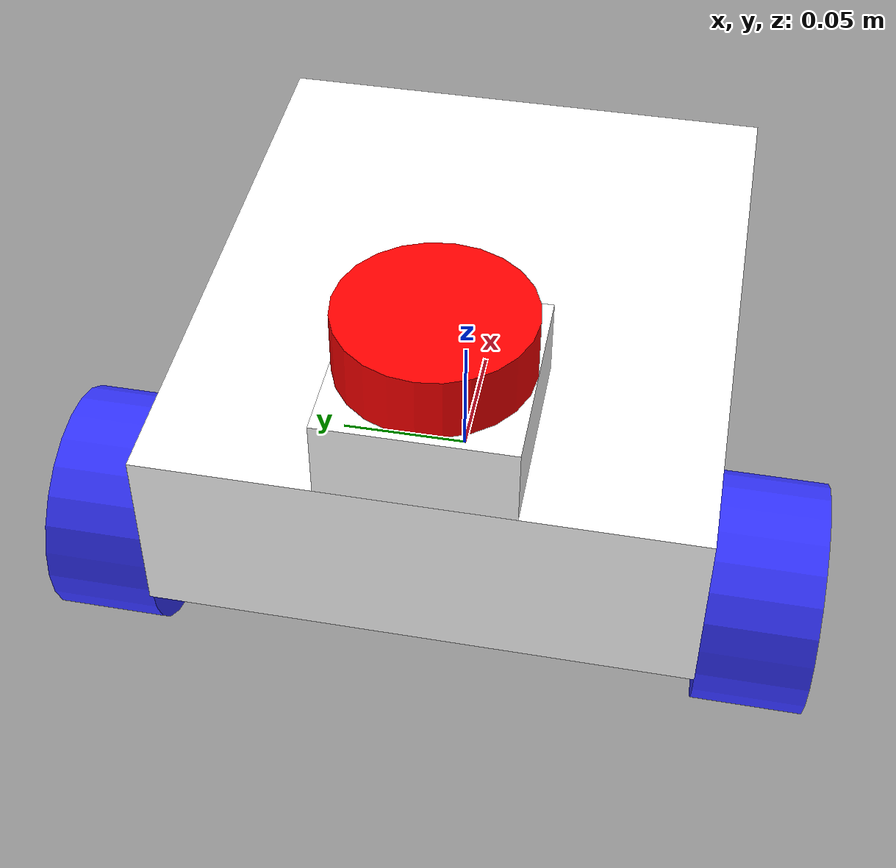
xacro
<?xml version="1.0"?>
<robot xmlns:xacro="http://www.ros.org/wiki/xacro" name="robot">

    <!-- Load Simulated or Real Hardware Interfaces -->
    <xacro:arg name="is_sim" default="true"/>

    <xacro:include filename="inertial_macros.xacro"/>
    <xacro:include filename="lidar.xacro"/>
    <xacro:include filename="ros2_control.xacro"/>

    <material name="white">
        <color rgba="1 1 1 1" />
    </material>

    <material name="orange">
        <color rgba="1 0.3 0.1 1" />
    </material>

    <material name="blue">
        <color rgba="0.2 0.2 1 1" />
    </material>

    <material name="black">
        <color rgba="0 0 0 1" />
    </material>

    <material name="red">
        <color rgba="1 0 0 1" />
    </material>

    <!-- BASE LINK -->

    <link name="base_link">

    </link>

    <!-- CHASSIS LINK -->

    <joint name="chassis_joint" type="fixed">
        <parent link = "base_link"/>
        <child link="chassis"/>
        <origin xyz="-0.1 0 0"/>
    </joint>

    <link name="chassis">
        <visual>
            <origin xyz="0.12 0 0.035"/>
            <geometry>
                <box size="0.24 0.2 0.07"/>
            </geometry>
            <material name="white"/>
        </visual>
        <collision>
            <origin xyz="0.12 0 0.035"/>
            <geometry>
                <box size="0.24 0.2 0.07"/>
            </geometry>
        </collision>
        <xacro:inertial_box mass="0.5" x="0.24" y="0.2" z="0.07">
            <origin xyz="0.12 0 0.035" rpy="0 0 0"/>
        </xacro:inertial_box>
    </link>

    <gazebo reference="chassis">
        <material>Gazebo/White</material>
    </gazebo>

    <!-- LIDAR BASE LINK -->

    <joint name="lidar_joint" type="fixed">
        <parent link = "chassis"/>
        <child link="lidar_base"/>
        <origin xyz="0.0375 0 0.07"/>
    </joint>

    <link name="lidar_base">
        <visual>
            <origin xyz="0.0 0 0.015"/>
            <geometry>
                <box size="0.075 0.07 0.03"/>
            </geometry>
            <material name="white"/>
        </visual>
        <collision>
            <origin xyz="0 0 0.015"/>
            <geometry>
                <box size="0.075 0.07 0.03"/>
            </geometry>
        </collision>
        <xacro:inertial_box mass="0.5" x="0.075" y="0.07" z="0.03">
            <origin xyz="0.0 0 0.015" rpy="0 0 0"/>
        </xacro:inertial_box>
    </link>

    <gazebo reference="chassis">
        <material>Gazebo/White</material>
    </gazebo>

    <!-- LEFT WHEEL LINK -->

    <joint name="left_wheel_joint" type="continuous">
        <parent link="base_link"/>
        <child link="left_wheel"/>
        <origin xyz="-0.055 0.12 0" rpy="-${pi/2} 0 0"/>
        <axis xyz="0 0 1"/>
    </joint>

    <link name="left_wheel">
        <visual>
            <geometry>
                <cylinder radius="0.0425" length="0.04"/>
            </geometry>
            <material name="blue"/>
        </visual>
        <collision>
            <geometry>
                <sphere radius="0.0425"/>
            </geometry>
        </collision>
        <xacro:inertial_cylinder mass="0.1" length="0.04" radius="0.0425">
            <origin xyz="0 0 0" rpy="0 0 0"/>
        </xacro:inertial_cylinder>
    </link>

    <gazebo reference="left_wheel">
        <material>Gazebo/Blue</material> -->
    </gazebo>

    <!-- RIGHT WHEEL LINK-->

    <joint name="right_wheel_joint" type="continuous">
        <parent link="base_link"/>
        <child link="right_wheel"/>
        <origin xyz="-0.055 -0.12 0" rpy="${pi/2} 0 0"/>
        <axis xyz="0 0 -1"/>
    </joint>

    <link name="right_wheel">
        <visual>
            <geometry>
                <cylinder radius="0.0425" length="0.04"/>
            </geometry>
            <material name="blue"/>
        </visual>
        <collision>
            <geometry>
                <sphere radius="0.0425"/>
            </geometry>
        </collision>
        <xacro:inertial_cylinder mass="0.1" length="0.04" radius="0.0425">
            <origin xyz="0 0 0" rpy="0 0 0"/>
        </xacro:inertial_cylinder>
    </link>

    <gazebo reference="right_wheel">
        <material>Gazebo/Blue</material>
    </gazebo>

    <!--CASTOR WHEEL LINK-->

    <joint name="caster_wheel_joint" type="fixed">
        <parent link="chassis"/>
        <child link="castor_wheel"/>
        <origin xyz="0.18 0 0"/>
    </joint>

    <link name="castor_wheel">
        <visual>
            <geometry>
                <sphere radius="0.05"/>
            </geometry>
            <material name="black"/>
        </visual>
        <collision>
            <geometry>
                <sphere radius="0.04"/>
            </geometry>
        </collision>
        <xacro:inertial_sphere mass="0.1" radius="0.04">
            <origin xyz="0 0 0" rpy="0 0 0"/>
        </xacro:inertial_sphere>
    </link>

    <gazebo reference="castor_wheel">
        <material>Gazebo/Black</material>
        <mu1 value="0.001"/>
        <mu2 value="0.001"/>
    </gazebo>

</robot>

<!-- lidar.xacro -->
<robot xmlns:xacro="http://www.ros.org/wiki/xacro"  name="robot">

    <joint name="laser_joint" type ="fixed">
        <parent link="lidar_base"/>
        <child link="laser_frame"/>
        <origin xyz="0.0 0 0.042" rpy="0 0 0"/>
    </joint>

    <link name="laser_frame">
        <visual>
            <geometry>
                <cylinder radius="0.035" length="0.024"/>
            </geometry>
            <material name="red"/>
        </visual>
        <collision>
            <geometry>
                <cylinder radius="0.035" length="0.024"/>
            </geometry>
        </collision>
        <xacro:inertial_cylinder mass="0.1" length="0.024" radius="0.035">
            <origin xyz="0 0 0" rpy="0 0 0"/>
        </xacro:inertial_cylinder>
    </link>

    <gazebo reference ="laser_frame">
        <material>Gazebo/Red</material>
        <sensor name="laser" type="ray">
            <pose> 0 0 0 0 0 0 </pose>
            <visualize>false</visualize>
            <update_rate>10</update_rate>
            <ray>
                <scan>
                    <horizontal>
                        <samples>360</samples>
                        <resolution>1</resolution>
                        <min_angle>-3.14</min_angle>
                        <max_angle>3.14</max_angle>
                    </horizontal>
                </scan>
                <range>
                    <min>0.3</min>
                    <max>12</max>
                    <resolution>0.01</resolution>
                </range>
            </ray>
            <plugin name="laser_controller" filename="libgazebo_ros_ray_sensor.so">
                <ros>
                    <argument>~/out:=scan</argument>
                </ros>
                <output_type>sensor_msgs/LaserScan</output_type>
                <frame_name>laser_frame</frame_name>

            </plugin>
        </sensor>
    </gazebo>

</robot>
